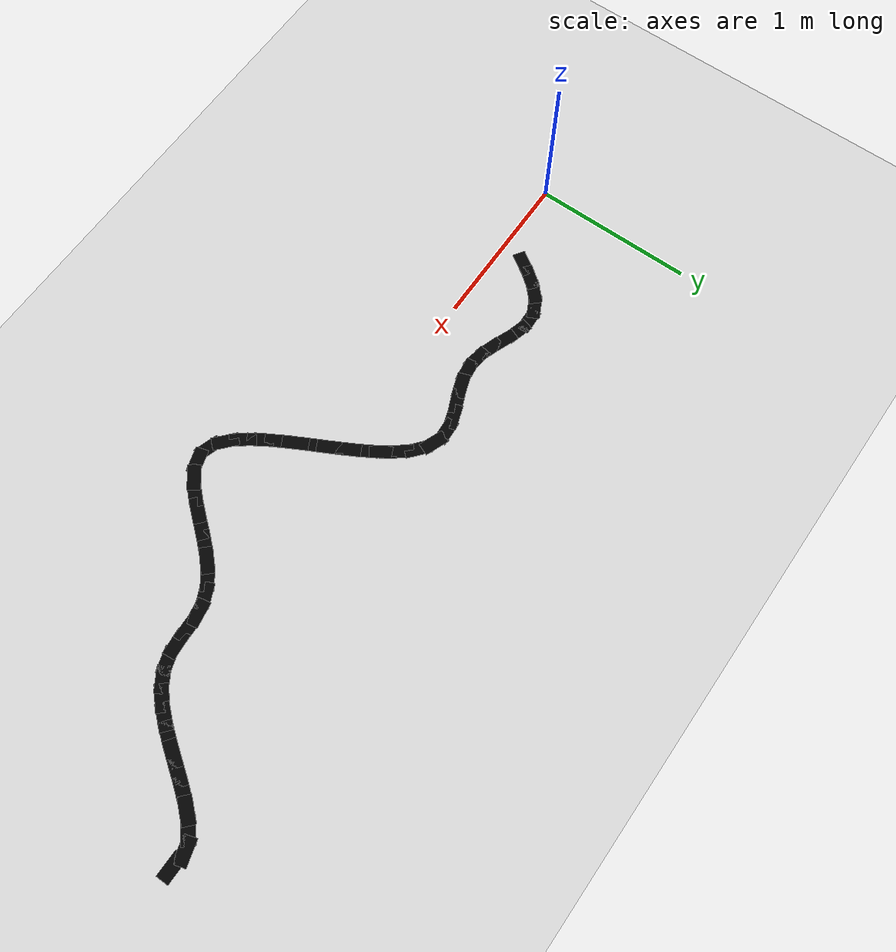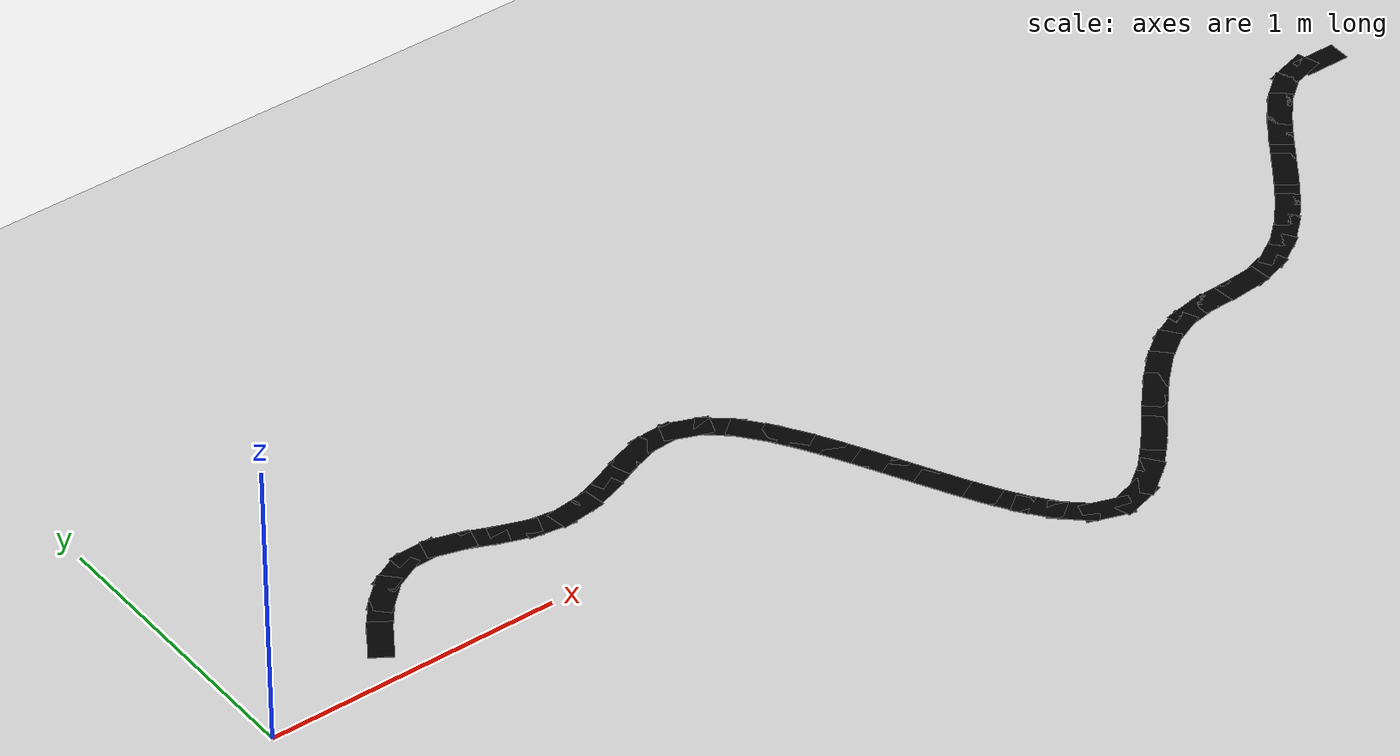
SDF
<?xml version="1.0" ?>
<sdf version="1.7">
  <world name="line_track">

    <physics name="1ms" type="ignored">
      <max_step_size>0.001</max_step_size>
      <real_time_factor>1.0</real_time_factor>
    </physics>

    <plugin filename="gz-sim-physics-system" name="gz::sim::systems::Physics"></plugin>
    <plugin filename="gz-sim-sensors-system" name="gz::sim::systems::Sensors">
      <render_engine>ogre2</render_engine>
    </plugin>
    <plugin filename="gz-sim-scene-broadcaster-system" name="gz::sim::systems::SceneBroadcaster"></plugin>
    <plugin filename="gz-sim-user-commands-system" name="gz::sim::systems::UserCommands"></plugin>

    <light type="directional" name="sun">
      <cast_shadows>true</cast_shadows>
      <pose>0 0 10 0 0 0</pose>
      <diffuse>0.8 0.8 0.8 1</diffuse>
      <specular>0.2 0.2 0.2 1</specular>
      <direction>-0.5 0.1 -0.9</direction>
    </light>

    <model name="ground_plane">
      <static>true</static>
      <link name="link">
        <collision name="collision">
          <geometry>
            <plane><normal>0 0 1</normal><size>10 10</size></plane>
          </geometry>
          <surface>
            <friction><ode><mu>100</mu><mu2>50</mu2></ode></friction>
          </surface>
        </collision>
        <visual name="visual">
          <geometry>
            <plane><normal>0 0 1</normal><size>10 10</size></plane>
          </geometry>
          <material>
            <ambient>0.8 0.8 0.8 1</ambient>
            <diffuse>0.8 0.8 0.8 1</diffuse>
          </material>
        </visual>
      </link>
    </model>

        <model name="line_seg_0">
      <static>true</static>
      <link name="link">
        <pose>0.5000 0.1683 0.0010 0 0 0.9946</pose>
        <visual name="visual">
          <geometry>
            <box><size>0.16 0.08 0.002</size></box>
          </geometry>
          <material>
            <ambient>0 0 0 1</ambient>
            <diffuse>0 0 0 1</diffuse>
          </material>
        </visual>
      </link>
    </model>

    <model name="line_seg_1">
      <static>true</static>
      <link name="link">
        <pose>0.5591 0.2522 0.0010 0 0 0.9116</pose>
        <visual name="visual">
          <geometry>
            <box><size>0.16 0.08 0.002</size></box>
          </geometry>
          <material>
            <ambient>0 0 0 1</ambient>
            <diffuse>0 0 0 1</diffuse>
          </material>
        </visual>
      </link>
    </model>

    <model name="line_seg_2">
      <static>true</static>
      <link name="link">
        <pose>0.6276 0.3286 0.0010 0 0 0.7535</pose>
        <visual name="visual">
          <geometry>
            <box><size>0.16 0.08 0.002</size></box>
          </geometry>
          <material>
            <ambient>0 0 0 1</ambient>
            <diffuse>0 0 0 1</diffuse>
          </material>
        </visual>
      </link>
    </model>

    <model name="line_seg_3">
      <static>true</static>
      <link name="link">
        <pose>0.7108 0.3882 0.0010 0 0 0.4655</pose>
        <visual name="visual">
          <geometry>
            <box><size>0.16 0.08 0.002</size></box>
          </geometry>
          <material>
            <ambient>0 0 0 1</ambient>
            <diffuse>0 0 0 1</diffuse>
          </material>
        </visual>
      </link>
    </model>

    <model name="line_seg_4">
      <static>true</static>
      <link name="link">
        <pose>0.8094 0.4139 0.0010 0 0 0.0362</pose>
        <visual name="visual">
          <geometry>
            <box><size>0.16 0.08 0.002</size></box>
          </geometry>
          <material>
            <ambient>0 0 0 1</ambient>
            <diffuse>0 0 0 1</diffuse>
          </material>
        </visual>
      </link>
    </model>

    <model name="line_seg_5">
      <static>true</static>
      <link name="link">
        <pose>0.9107 0.4001 0.0010 0 0 -0.2739</pose>
        <visual name="visual">
          <geometry>
            <box><size>0.16 0.08 0.002</size></box>
          </geometry>
          <material>
            <ambient>0 0 0 1</ambient>
            <diffuse>0 0 0 1</diffuse>
          </material>
        </visual>
      </link>
    </model>

    <model name="line_seg_6">
      <static>true</static>
      <link name="link">
        <pose>1.0074 0.3656 0.0010 0 0 -0.3814</pose>
        <visual name="visual">
          <geometry>
            <box><size>0.16 0.08 0.002</size></box>
          </geometry>
          <material>
            <ambient>0 0 0 1</ambient>
            <diffuse>0 0 0 1</diffuse>
          </material>
        </visual>
      </link>
    </model>

    <model name="line_seg_7">
      <static>true</static>
      <link name="link">
        <pose>1.1032 0.3287 0.0010 0 0 -0.3302</pose>
        <visual name="visual">
          <geometry>
            <box><size>0.16 0.08 0.002</size></box>
          </geometry>
          <material>
            <ambient>0 0 0 1</ambient>
            <diffuse>0 0 0 1</diffuse>
          </material>
        </visual>
      </link>
    </model>

    <model name="line_seg_8">
      <static>true</static>
      <link name="link">
        <pose>1.2027 0.3038 0.0010 0 0 -0.1398</pose>
        <visual name="visual">
          <geometry>
            <box><size>0.16 0.08 0.002</size></box>
          </geometry>
          <material>
            <ambient>0 0 0 1</ambient>
            <diffuse>0 0 0 1</diffuse>
          </material>
        </visual>
      </link>
    </model>

    <model name="line_seg_9">
      <static>true</static>
      <link name="link">
        <pose>1.3051 0.3030 0.0010 0 0 0.1300</pose>
        <visual name="visual">
          <geometry>
            <box><size>0.16 0.08 0.002</size></box>
          </geometry>
          <material>
            <ambient>0 0 0 1</ambient>
            <diffuse>0 0 0 1</diffuse>
          </material>
        </visual>
      </link>
    </model>

    <model name="line_seg_10">
      <static>true</static>
      <link name="link">
        <pose>1.4047 0.3271 0.0010 0 0 0.3328</pose>
        <visual name="visual">
          <geometry>
            <box><size>0.16 0.08 0.002</size></box>
          </geometry>
          <material>
            <ambient>0 0 0 1</ambient>
            <diffuse>0 0 0 1</diffuse>
          </material>
        </visual>
      </link>
    </model>

    <model name="line_seg_11">
      <static>true</static>
      <link name="link">
        <pose>1.5001 0.3651 0.0010 0 0 0.4045</pose>
        <visual name="visual">
          <geometry>
            <box><size>0.16 0.08 0.002</size></box>
          </geometry>
          <material>
            <ambient>0 0 0 1</ambient>
            <diffuse>0 0 0 1</diffuse>
          </material>
        </visual>
      </link>
    </model>

    <model name="line_seg_12">
      <static>true</static>
      <link name="link">
        <pose>1.5954 0.4033 0.0010 0 0 0.3298</pose>
        <visual name="visual">
          <geometry>
            <box><size>0.16 0.08 0.002</size></box>
          </geometry>
          <material>
            <ambient>0 0 0 1</ambient>
            <diffuse>0 0 0 1</diffuse>
          </material>
        </visual>
      </link>
    </model>

    <model name="line_seg_13">
      <static>true</static>
      <link name="link">
        <pose>1.6955 0.4248 0.0010 0 0 0.0566</pose>
        <visual name="visual">
          <geometry>
            <box><size>0.16 0.08 0.002</size></box>
          </geometry>
          <material>
            <ambient>0 0 0 1</ambient>
            <diffuse>0 0 0 1</diffuse>
          </material>
        </visual>
      </link>
    </model>

    <model name="line_seg_14">
      <static>true</static>
      <link name="link">
        <pose>1.7961 0.4087 0.0010 0 0 -0.3732</pose>
        <visual name="visual">
          <geometry>
            <box><size>0.16 0.08 0.002</size></box>
          </geometry>
          <material>
            <ambient>0 0 0 1</ambient>
            <diffuse>0 0 0 1</diffuse>
          </material>
        </visual>
      </link>
    </model>

    <model name="line_seg_15">
      <static>true</static>
      <link name="link">
        <pose>1.8829 0.3547 0.0010 0 0 -0.7079</pose>
        <visual name="visual">
          <geometry>
            <box><size>0.16 0.08 0.002</size></box>
          </geometry>
          <material>
            <ambient>0 0 0 1</ambient>
            <diffuse>0 0 0 1</diffuse>
          </material>
        </visual>
      </link>
    </model>

    <model name="line_seg_16">
      <static>true</static>
      <link name="link">
        <pose>1.9540 0.2807 0.0010 0 0 -0.8888</pose>
        <visual name="visual">
          <geometry>
            <box><size>0.16 0.08 0.002</size></box>
          </geometry>
          <material>
            <ambient>0 0 0 1</ambient>
            <diffuse>0 0 0 1</diffuse>
          </material>
        </visual>
      </link>
    </model>

    <model name="line_seg_17">
      <static>true</static>
      <link name="link">
        <pose>2.0145 0.1979 0.0010 0 0 -0.9854</pose>
        <visual name="visual">
          <geometry>
            <box><size>0.16 0.08 0.002</size></box>
          </geometry>
          <material>
            <ambient>0 0 0 1</ambient>
            <diffuse>0 0 0 1</diffuse>
          </material>
        </visual>
      </link>
    </model>

    <model name="line_seg_18">
      <static>true</static>
      <link name="link">
        <pose>2.0687 0.1106 0.0010 0 0 -1.0400</pose>
        <visual name="visual">
          <geometry>
            <box><size>0.16 0.08 0.002</size></box>
          </geometry>
          <material>
            <ambient>0 0 0 1</ambient>
            <diffuse>0 0 0 1</diffuse>
          </material>
        </visual>
      </link>
    </model>

    <model name="line_seg_19">
      <static>true</static>
      <link name="link">
        <pose>2.1190 0.0211 0.0010 0 0 -1.0737</pose>
        <visual name="visual">
          <geometry>
            <box><size>0.16 0.08 0.002</size></box>
          </geometry>
          <material>
            <ambient>0 0 0 1</ambient>
            <diffuse>0 0 0 1</diffuse>
          </material>
        </visual>
      </link>
    </model>

    <model name="line_seg_20">
      <static>true</static>
      <link name="link">
        <pose>2.1672 -0.0696 0.0010 0 0 -1.0895</pose>
        <visual name="visual">
          <geometry>
            <box><size>0.16 0.08 0.002</size></box>
          </geometry>
          <material>
            <ambient>0 0 0 1</ambient>
            <diffuse>0 0 0 1</diffuse>
          </material>
        </visual>
      </link>
    </model>

    <model name="line_seg_21">
      <static>true</static>
      <link name="link">
        <pose>2.2145 -0.1607 0.0010 0 0 -1.0920</pose>
        <visual name="visual">
          <geometry>
            <box><size>0.16 0.08 0.002</size></box>
          </geometry>
          <material>
            <ambient>0 0 0 1</ambient>
            <diffuse>0 0 0 1</diffuse>
          </material>
        </visual>
      </link>
    </model>

    <model name="line_seg_22">
      <static>true</static>
      <link name="link">
        <pose>2.2622 -0.2517 0.0010 0 0 -1.0810</pose>
        <visual name="visual">
          <geometry>
            <box><size>0.16 0.08 0.002</size></box>
          </geometry>
          <material>
            <ambient>0 0 0 1</ambient>
            <diffuse>0 0 0 1</diffuse>
          </material>
        </visual>
      </link>
    </model>

    <model name="line_seg_23">
      <static>true</static>
      <link name="link">
        <pose>2.3115 -0.3418 0.0010 0 0 -1.0550</pose>
        <visual name="visual">
          <geometry>
            <box><size>0.16 0.08 0.002</size></box>
          </geometry>
          <material>
            <ambient>0 0 0 1</ambient>
            <diffuse>0 0 0 1</diffuse>
          </material>
        </visual>
      </link>
    </model>

    <model name="line_seg_24">
      <static>true</static>
      <link name="link">
        <pose>2.3641 -0.4300 0.0010 0 0 -1.0061</pose>
        <visual name="visual">
          <geometry>
            <box><size>0.16 0.08 0.002</size></box>
          </geometry>
          <material>
            <ambient>0 0 0 1</ambient>
            <diffuse>0 0 0 1</diffuse>
          </material>
        </visual>
      </link>
    </model>

    <model name="line_seg_25">
      <static>true</static>
      <link name="link">
        <pose>2.4226 -0.5144 0.0010 0 0 -0.9122</pose>
        <visual name="visual">
          <geometry>
            <box><size>0.16 0.08 0.002</size></box>
          </geometry>
          <material>
            <ambient>0 0 0 1</ambient>
            <diffuse>0 0 0 1</diffuse>
          </material>
        </visual>
      </link>
    </model>

    <model name="line_seg_26">
      <static>true</static>
      <link name="link">
        <pose>2.4914 -0.5904 0.0010 0 0 -0.7313</pose>
        <visual name="visual">
          <geometry>
            <box><size>0.16 0.08 0.002</size></box>
          </geometry>
          <material>
            <ambient>0 0 0 1</ambient>
            <diffuse>0 0 0 1</diffuse>
          </material>
        </visual>
      </link>
    </model>

    <model name="line_seg_27">
      <static>true</static>
      <link name="link">
        <pose>2.5779 -0.6444 0.0010 0 0 -0.3218</pose>
        <visual name="visual">
          <geometry>
            <box><size>0.16 0.08 0.002</size></box>
          </geometry>
          <material>
            <ambient>0 0 0 1</ambient>
            <diffuse>0 0 0 1</diffuse>
          </material>
        </visual>
      </link>
    </model>

    <model name="line_seg_28">
      <static>true</static>
      <link name="link">
        <pose>2.6789 -0.6462 0.0010 0 0 0.2947</pose>
        <visual name="visual">
          <geometry>
            <box><size>0.16 0.08 0.002</size></box>
          </geometry>
          <material>
            <ambient>0 0 0 1</ambient>
            <diffuse>0 0 0 1</diffuse>
          </material>
        </visual>
      </link>
    </model>

    <model name="line_seg_29">
      <static>true</static>
      <link name="link">
        <pose>2.7687 -0.5976 0.0010 0 0 0.6515</pose>
        <visual name="visual">
          <geometry>
            <box><size>0.16 0.08 0.002</size></box>
          </geometry>
          <material>
            <ambient>0 0 0 1</ambient>
            <diffuse>0 0 0 1</diffuse>
          </material>
        </visual>
      </link>
    </model>

    <model name="line_seg_30">
      <static>true</static>
      <link name="link">
        <pose>2.8445 -0.5285 0.0010 0 0 0.8046</pose>
        <visual name="visual">
          <geometry>
            <box><size>0.16 0.08 0.002</size></box>
          </geometry>
          <material>
            <ambient>0 0 0 1</ambient>
            <diffuse>0 0 0 1</diffuse>
          </material>
        </visual>
      </link>
    </model>

    <model name="line_seg_31">
      <static>true</static>
      <link name="link">
        <pose>2.9130 -0.4520 0.0010 0 0 0.8656</pose>
        <visual name="visual">
          <geometry>
            <box><size>0.16 0.08 0.002</size></box>
          </geometry>
          <material>
            <ambient>0 0 0 1</ambient>
            <diffuse>0 0 0 1</diffuse>
          </material>
        </visual>
      </link>
    </model>

    <model name="line_seg_32">
      <static>true</static>
      <link name="link">
        <pose>2.9788 -0.3732 0.0010 0 0 0.8768</pose>
        <visual name="visual">
          <geometry>
            <box><size>0.16 0.08 0.002</size></box>
          </geometry>
          <material>
            <ambient>0 0 0 1</ambient>
            <diffuse>0 0 0 1</diffuse>
          </material>
        </visual>
      </link>
    </model>

    <model name="line_seg_33">
      <static>true</static>
      <link name="link">
        <pose>3.0454 -0.2949 0.0010 0 0 0.8491</pose>
        <visual name="visual">
          <geometry>
            <box><size>0.16 0.08 0.002</size></box>
          </geometry>
          <material>
            <ambient>0 0 0 1</ambient>
            <diffuse>0 0 0 1</diffuse>
          </material>
        </visual>
      </link>
    </model>

    <model name="line_seg_34">
      <static>true</static>
      <link name="link">
        <pose>3.1157 -0.2201 0.0010 0 0 0.7740</pose>
        <visual name="visual">
          <geometry>
            <box><size>0.16 0.08 0.002</size></box>
          </geometry>
          <material>
            <ambient>0 0 0 1</ambient>
            <diffuse>0 0 0 1</diffuse>
          </material>
        </visual>
      </link>
    </model>

    <model name="line_seg_35">
      <static>true</static>
      <link name="link">
        <pose>3.1933 -0.1529 0.0010 0 0 0.6416</pose>
        <visual name="visual">
          <geometry>
            <box><size>0.16 0.08 0.002</size></box>
          </geometry>
          <material>
            <ambient>0 0 0 1</ambient>
            <diffuse>0 0 0 1</diffuse>
          </material>
        </visual>
      </link>
    </model>

    <model name="line_seg_36">
      <static>true</static>
      <link name="link">
        <pose>3.2812 -0.1002 0.0010 0 0 0.4289</pose>
        <visual name="visual">
          <geometry>
            <box><size>0.16 0.08 0.002</size></box>
          </geometry>
          <material>
            <ambient>0 0 0 1</ambient>
            <diffuse>0 0 0 1</diffuse>
          </material>
        </visual>
      </link>
    </model>

    <model name="line_seg_37">
      <static>true</static>
      <link name="link">
        <pose>3.3789 -0.0695 0.0010 0 0 0.1808</pose>
        <visual name="visual">
          <geometry>
            <box><size>0.16 0.08 0.002</size></box>
          </geometry>
          <material>
            <ambient>0 0 0 1</ambient>
            <diffuse>0 0 0 1</diffuse>
          </material>
        </visual>
      </link>
    </model>

    <model name="line_seg_38">
      <static>true</static>
      <link name="link">
        <pose>3.4810 -0.0591 0.0010 0 0 0.0455</pose>
        <visual name="visual">
          <geometry>
            <box><size>0.16 0.08 0.002</size></box>
          </geometry>
          <material>
            <ambient>0 0 0 1</ambient>
            <diffuse>0 0 0 1</diffuse>
          </material>
        </visual>
      </link>
    </model>

    <model name="line_seg_39">
      <static>true</static>
      <link name="link">
        <pose>3.5835 -0.0537 0.0010 0 0 0.0946</pose>
        <visual name="visual">
          <geometry>
            <box><size>0.16 0.08 0.002</size></box>
          </geometry>
          <material>
            <ambient>0 0 0 1</ambient>
            <diffuse>0 0 0 1</diffuse>
          </material>
        </visual>
      </link>
    </model>

    <model name="line_seg_40">
      <static>true</static>
      <link name="link">
        <pose>3.6842 -0.0345 0.0010 0 0 0.3090</pose>
        <visual name="visual">
          <geometry>
            <box><size>0.16 0.08 0.002</size></box>
          </geometry>
          <material>
            <ambient>0 0 0 1</ambient>
            <diffuse>0 0 0 1</diffuse>
          </material>
        </visual>
      </link>
    </model>

    <model name="line_seg_41">
      <static>true</static>
      <link name="link">
        <pose>3.7770 0.0089 0.0010 0 0 0.5624</pose>
        <visual name="visual">
          <geometry>
            <box><size>0.16 0.08 0.002</size></box>
          </geometry>
          <material>
            <ambient>0 0 0 1</ambient>
            <diffuse>0 0 0 1</diffuse>
          </material>
        </visual>
      </link>
    </model>

    <model name="line_seg_42">
      <static>true</static>
      <link name="link">
        <pose>3.8579 0.0719 0.0010 0 0 0.7470</pose>
        <visual name="visual">
          <geometry>
            <box><size>0.16 0.08 0.002</size></box>
          </geometry>
          <material>
            <ambient>0 0 0 1</ambient>
            <diffuse>0 0 0 1</diffuse>
          </material>
        </visual>
      </link>
    </model>

    <model name="line_seg_43">
      <static>true</static>
      <link name="link">
        <pose>3.9287 0.1462 0.0010 0 0 0.8617</pose>
        <visual name="visual">
          <geometry>
            <box><size>0.16 0.08 0.002</size></box>
          </geometry>
          <material>
            <ambient>0 0 0 1</ambient>
            <diffuse>0 0 0 1</diffuse>
          </material>
        </visual>
      </link>
    </model>

    <model name="line_seg_44">
      <static>true</static>
      <link name="link">
        <pose>3.9929 0.2264 0.0010 0 0 0.9242</pose>
        <visual name="visual">
          <geometry>
            <box><size>0.16 0.08 0.002</size></box>
          </geometry>
          <material>
            <ambient>0 0 0 1</ambient>
            <diffuse>0 0 0 1</diffuse>
          </material>
        </visual>
      </link>
    </model>

    <model name="line_seg_45">
      <static>true</static>
      <link name="link">
        <pose>4.0534 0.3093 0.0010 0 0 0.9529</pose>
        <visual name="visual">
          <geometry>
            <box><size>0.16 0.08 0.002</size></box>
          </geometry>
          <material>
            <ambient>0 0 0 1</ambient>
            <diffuse>0 0 0 1</diffuse>
          </material>
        </visual>
      </link>
    </model>

    <model name="line_seg_46">
      <static>true</static>
      <link name="link">
        <pose>4.1126 0.3932 0.0010 0 0 0.9538</pose>
        <visual name="visual">
          <geometry>
            <box><size>0.16 0.08 0.002</size></box>
          </geometry>
          <material>
            <ambient>0 0 0 1</ambient>
            <diffuse>0 0 0 1</diffuse>
          </material>
        </visual>
      </link>
    </model>

    <model name="line_seg_47">
      <static>true</static>
      <link name="link">
        <pose>4.1730 0.4763 0.0010 0 0 0.9244</pose>
        <visual name="visual">
          <geometry>
            <box><size>0.16 0.08 0.002</size></box>
          </geometry>
          <material>
            <ambient>0 0 0 1</ambient>
            <diffuse>0 0 0 1</diffuse>
          </material>
        </visual>
      </link>
    </model>

    <model name="line_seg_48">
      <static>true</static>
      <link name="link">
        <pose>4.2374 0.5562 0.0010 0 0 0.8501</pose>
        <visual name="visual">
          <geometry>
            <box><size>0.16 0.08 0.002</size></box>
          </geometry>
          <material>
            <ambient>0 0 0 1</ambient>
            <diffuse>0 0 0 1</diffuse>
          </material>
        </visual>
      </link>
    </model>

    <model name="line_seg_49">
      <static>true</static>
      <link name="link">
        <pose>4.3104 0.6283 0.0010 0 0 0.6863</pose>
        <visual name="visual">
          <geometry>
            <box><size>0.16 0.08 0.002</size></box>
          </geometry>
          <material>
            <ambient>0 0 0 1</ambient>
            <diffuse>0 0 0 1</diffuse>
          </material>
        </visual>
      </link>
    </model>

    <model name="line_seg_50">
      <static>true</static>
      <link name="link">
        <pose>4.3992 0.6786 0.0010 0 0 0.2909</pose>
        <visual name="visual">
          <geometry>
            <box><size>0.16 0.08 0.002</size></box>
          </geometry>
          <material>
            <ambient>0 0 0 1</ambient>
            <diffuse>0 0 0 1</diffuse>
          </material>
        </visual>
      </link>
    </model>

    <model name="line_seg_51">
      <static>true</static>
      <link name="link">
        <pose>4.5000 0.6752 0.0010 0 0 0.0000</pose>
        <visual name="visual">
          <geometry>
            <box><size>0.16 0.08 0.002</size></box>
          </geometry>
          <material>
            <ambient>0 0 0 1</ambient>
            <diffuse>0 0 0 1</diffuse>
          </material>
        </visual>
      </link>
    </model>

  </world>
</sdf>
